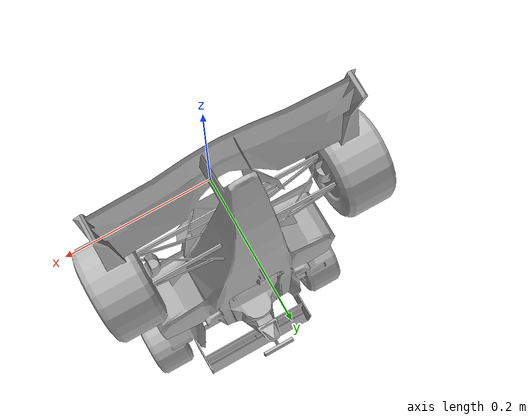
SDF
<?xml version="1.0"?>
<sdf version="1.4">
	<model name="f1">
		<pose>
			0 0 0 0 0 0
		</pose>
		<static>
			false
		</static>
		<link name="car">
			<pose>
				0 0 0 0 0 0
			</pose>
			<collision name="collision">
				<geometry>
					<mesh>
						<uri>
							model://f1_dummy_harmonic/meshes/F1Y.stl
						</uri>
					</mesh>
				</geometry>
			</collision>
			<visual name="visual">
				<geometry>
					<mesh>
						<uri>
							model://f1_dummy_harmonic/meshes/F1Y.dae
						</uri>
					</mesh>
				</geometry>
			</visual>
		</link>
	</model>
</sdf>
